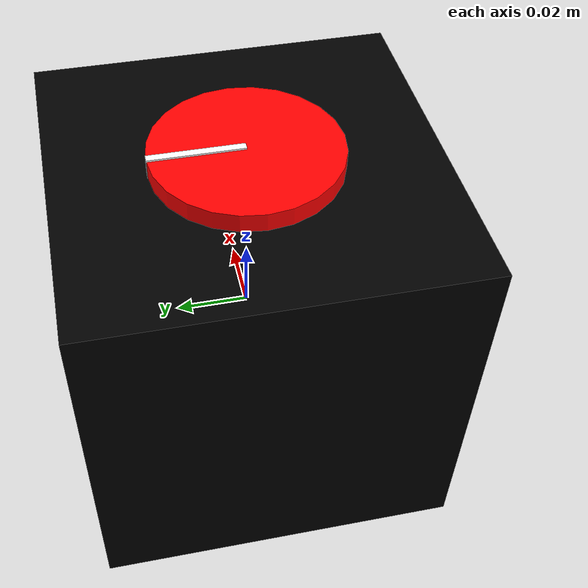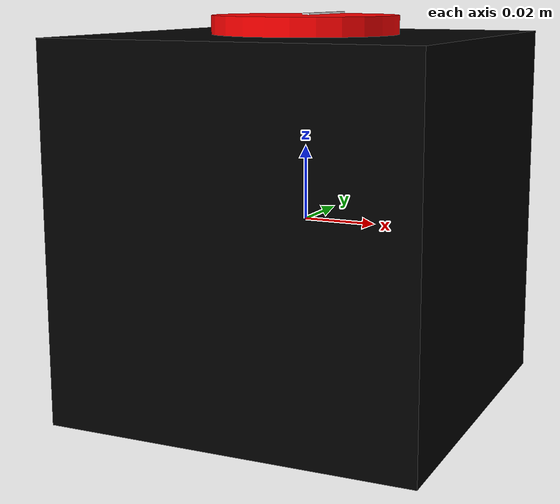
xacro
<?xml version = "1.0"?>
<robot name="qube" xmlns:xacro = "https://www.ros.org/wiki/xacro">

    <!-- Argumenter -->
	<xacro:arg name = "baud_rate" default = "115200"/>
	<xacro:arg name = "device" default = "/dev/ttyACM0"/>
    <xacro:arg name = "simulation" default = "true"/>

    <!-- Inkluder beskrivelse av qube -->
    <xacro:include filename = "$(find qube_description)/urdf/qube.macro.xacro"/>
    <xacro:include filename = "$(find qube_driver)/ros2_control/qube_driver.ros2_control.xacro"/>

    <!-- Kaller qube-makro -->
    <xacro:qube/>

    <!-- Kaller driver-makro -->
    <xacro:qube_driver_ros2_control
        name = "qube_driver"
        prefix = ""
        baud_rate = "$(arg baud_rate)"
        device = "$(arg device)"
        simulation = "$(arg simulation)"/>

	<link name = "world"/>

    <!-- World link -->
    <joint name = "base_to_world" type = "fixed">
        <parent link = "world"/>
        <child link = "baseLink"/>
    </joint>
</robot>

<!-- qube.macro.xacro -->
<robot xmlns:xacro = "https://wwww.ros.org/wiki/xacro">
    <xacro:macro name = "qube">
        <xacro:property name = "baseSize" value = "0.1" />
		<xacro:property name = "diskRadius" value = "${baseSize / 4}" />
        <xacro:property name = "diskHeight" value = "0.01" />

        <!-- Svart boks -->
        <link name = "baseLink">
            <visual>
                <geometry>
					<box size = "${baseSize} ${baseSize} ${baseSize}"/>
                </geometry>
                <material name =  "black">
                    <color rgba = "0 0 0 1"/>
                </material>
            </visual>
        </link>

        <!-- Rød disk -->
        <link name = "disk">
            <visual>
                <geometry>
                    <cylinder radius = "${diskRadius}" length = "${diskHeight}"/>
                </geometry>
                <material name = "red">
                    <color rgba = "1 0 0 1"/>
                </material>
            </visual>
        </link>

        <!-- Indikator -->
        <link name = "indicator">
            <visual>
                <geometry>
					<box size = "${diskHeight * 0.2} ${diskRadius} ${diskHeight*1.1}"/>
                </geometry>
                <material name = "white">
                    <color rgba = "1 1 1 1"/>
                </material>
            </visual>
        </link>

        <!-- Joints -->
        <joint name = "motor_joint" type = "continuous">
            <parent link = "baseLink"/>
            <child link = "disk"/>
			<!-- Invert rotation to follow real one correctly -->
			<axis xyz = "0 0 -1"/>
			<origin xyz = "0 0 ${baseSize / 2}"/>
        </joint>

        <joint name = "indicatorJoint" type = "fixed">
            <parent link = "disk"/>
            <child link = "indicator"/>
			<origin xyz = "0 ${diskRadius / 2} 0"/>
        </joint>
	</xacro:macro>
</robot>
